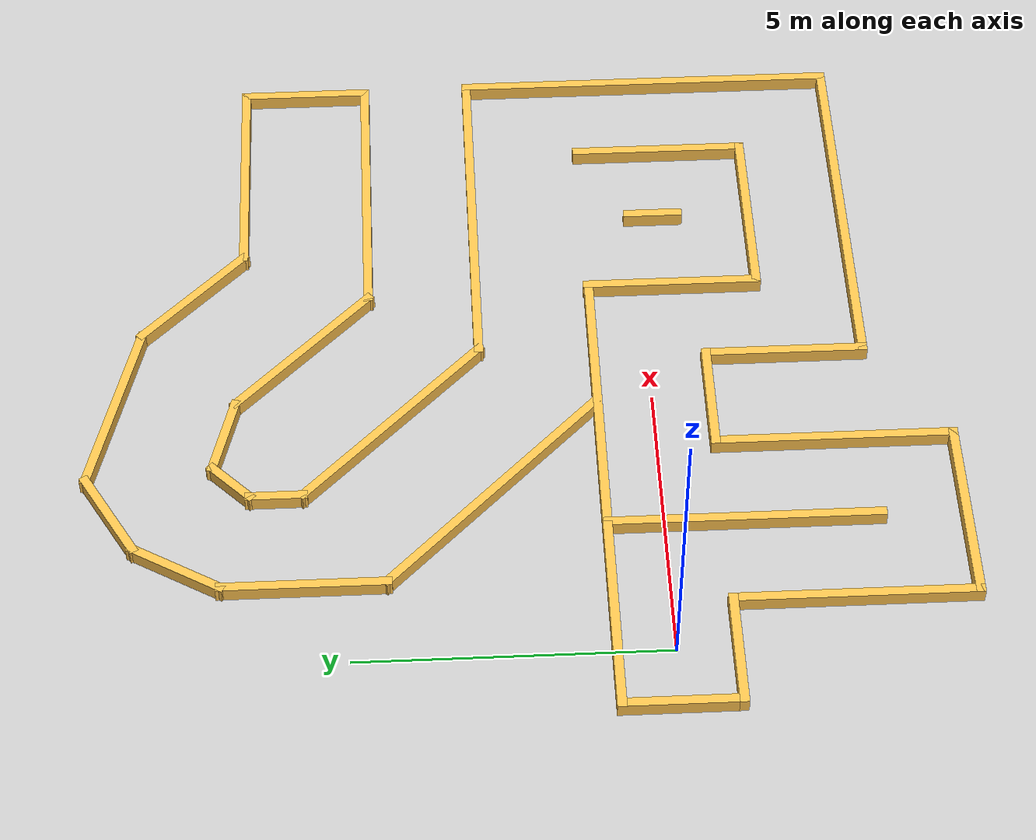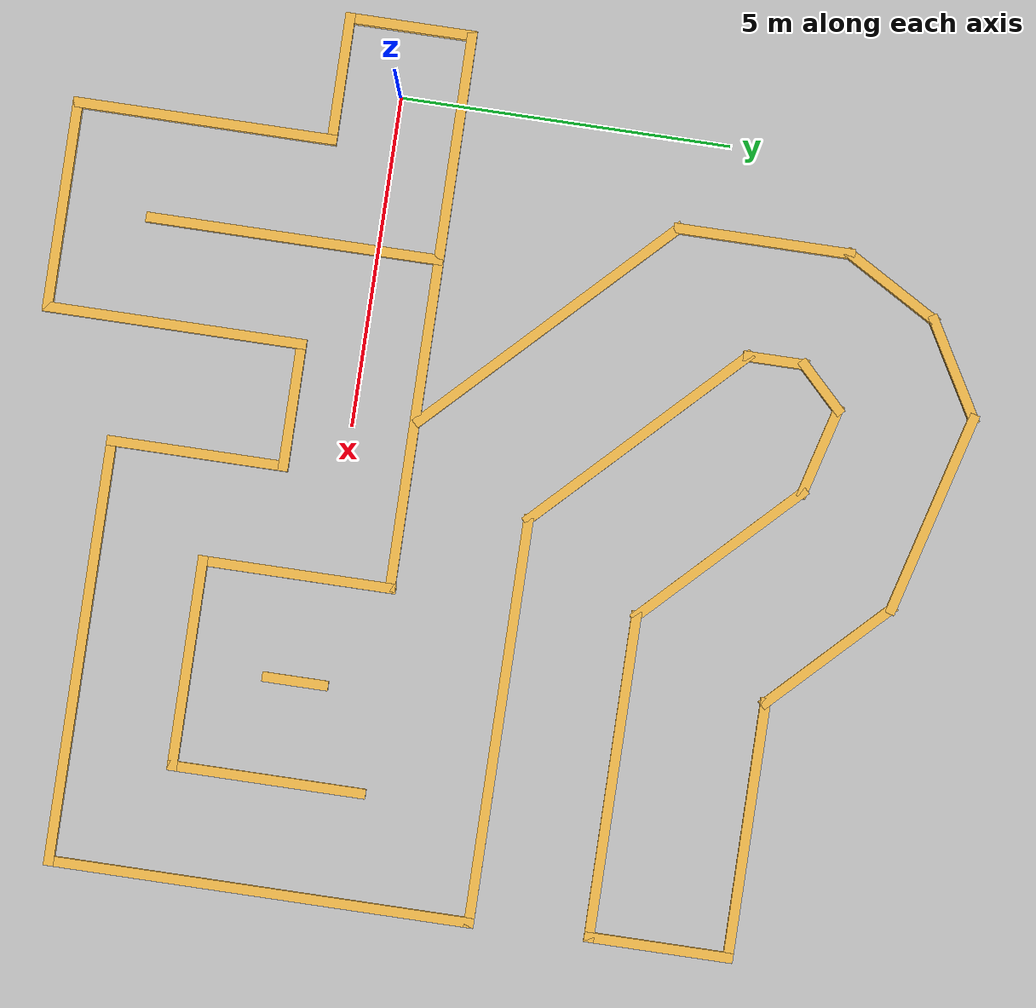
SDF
<?xml version="1.0" ?>
<sdf version="1.5">
  <world name="default">
    <!-- A global light source -->
    <include>
      <uri>model://sun</uri>
    </include>
    <!-- A ground plane -->
    <include>
      <uri>model://ground_plane</uri>
    </include>
    <!-- A ground plane -->
    <include>
      <uri>model://maze</uri>
    </include>
  </world>
</sdf>

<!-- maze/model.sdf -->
<sdf version='1.6'>
  <model name='maze'>
    <pose frame=''>5.512 2.22318 0 0 -0 0</pose>
    <link name='Wall_0'>
      <collision name='Wall_0_Collision'>
        <geometry>
          <box>
            <size>2 0.15 0.25</size>
          </box>
        </geometry>
        <pose frame=''>0 0 0.125 0 -0 0</pose>
      </collision>
      <visual name='Wall_0_Visual'>
        <pose frame=''>0 0 0.125 0 -0 0</pose>
        <geometry>
          <box>
            <size>2 0.15 0.25</size>
          </box>
        </geometry>
        <material>
          <script>
            <uri>file://media/materials/scripts/gazebo.material</uri>
            <name>Gazebo/Grey</name>
          </script>
          <ambient>1 0.764706 0.305882 1</ambient>
        </material>
        <meta>
          <layer>0</layer>
        </meta>
      </visual>
      <pose frame=''>-6.575 -2.22519 0 0 -0 1.5708</pose>
    </link>
    <link name='Wall_10'>
      <collision name='Wall_10_Collision'>
        <geometry>
          <box>
            <size>4 0.15 0.25</size>
          </box>
        </geometry>
        <pose frame=''>0 0 0.125 0 -0 0</pose>
      </collision>
      <visual name='Wall_10_Visual'>
        <pose frame=''>0 0 0.125 0 -0 0</pose>
        <geometry>
          <box>
            <size>4 0.15 0.25</size>
          </box>
        </geometry>
        <material>
          <script>
            <uri>file://media/materials/scripts/gazebo.material</uri>
            <name>Gazebo/Grey</name>
          </script>
          <ambient>1 0.764706 0.305882 1</ambient>
        </material>
        <meta>
          <layer>0</layer>
        </meta>
      </visual>
      <pose frame=''>-1.625 -5.07519 0 0 -0 1.5708</pose>
    </link>
    <link name='Wall_11'>
      <collision name='Wall_11_Collision'>
        <geometry>
          <box>
            <size>2 0.15 0.25</size>
          </box>
        </geometry>
        <pose frame=''>0 0 0.125 0 -0 0</pose>
      </collision>
      <visual name='Wall_11_Visual'>
        <pose frame=''>0 0 0.125 0 -0 0</pose>
        <geometry>
          <box>
            <size>2 0.15 0.25</size>
          </box>
        </geometry>
        <material>
          <script>
            <uri>file://media/materials/scripts/gazebo.material</uri>
            <name>Gazebo/Grey</name>
          </script>
          <ambient>1 0.764706 0.305882 1</ambient>
        </material>
        <meta>
          <layer>0</layer>
        </meta>
      </visual>
      <pose frame=''>-0.7 -3.15019 0 0 -0 0</pose>
    </link>
    <link name='Wall_12'>
      <collision name='Wall_12_Collision'>
        <geometry>
          <box>
            <size>2.75 0.15 0.25</size>
          </box>
        </geometry>
        <pose frame=''>0 0 0.125 0 -0 0</pose>
      </collision>
      <visual name='Wall_12_Visual'>
        <pose frame=''>0 0 0.125 0 -0 0</pose>
        <geometry>
          <box>
            <size>2.75 0.15 0.25</size>
          </box>
        </geometry>
        <material>
          <script>
            <uri>file://media/materials/scripts/gazebo.material</uri>
            <name>Gazebo/Grey</name>
          </script>
          <ambient>1 0.764706 0.305882 1</ambient>
        </material>
        <meta>
          <layer>0</layer>
        </meta>
      </visual>
      <pose frame=''>0.225 -4.45019 0 0 -0 -1.5708</pose>
    </link>
    <link name='Wall_13'>
      <collision name='Wall_13_Collision'>
        <geometry>
          <box>
            <size>6.5 0.15 0.25</size>
          </box>
        </geometry>
        <pose frame=''>0 0 0.125 0 -0 0</pose>
      </collision>
      <visual name='Wall_13_Visual'>
        <pose frame=''>0 0 0.125 0 -0 0</pose>
        <geometry>
          <box>
            <size>6.5 0.15 0.25</size>
          </box>
        </geometry>
        <material>
          <script>
            <uri>file://media/materials/scripts/gazebo.material</uri>
            <name>Gazebo/Grey</name>
          </script>
          <ambient>1 0.764706 0.305882 1</ambient>
        </material>
        <meta>
          <layer>0</layer>
        </meta>
      </visual>
      <pose frame=''>3.4 -5.75019 0 0 -0 0</pose>
    </link>
    <link name='Wall_15'>
      <collision name='Wall_15_Collision'>
        <geometry>
          <box>
            <size>4.5 0.15 0.25</size>
          </box>
        </geometry>
        <pose frame=''>0 0 0.125 0 -0 0</pose>
      </collision>
      <visual name='Wall_15_Visual'>
        <pose frame=''>0 0 0.125 0 -0 0</pose>
        <geometry>
          <box>
            <size>4.5 0.15 0.25</size>
          </box>
        </geometry>
        <material>
          <script>
            <uri>file://media/materials/scripts/gazebo.material</uri>
            <name>Gazebo/Grey</name>
          </script>
          <ambient>1 0.764706 0.305882 1</ambient>
        </material>
        <meta>
          <layer>0</layer>
        </meta>
      </visual>
      <pose frame=''>-3.174 -3.48618 0 0 -0 -1.5708</pose>
    </link>
    <link name='Wall_17'>
      <collision name='Wall_17_Collision'>
        <geometry>
          <box>
            <size>3 0.15 0.25</size>
          </box>
        </geometry>
        <pose frame=''>0 0 0.125 0 -0 0</pose>
      </collision>
      <visual name='Wall_17_Visual'>
        <pose frame=''>0 0 0.125 0 -0 0</pose>
        <geometry>
          <box>
            <size>3 0.15 0.25</size>
          </box>
        </geometry>
        <material>
          <script>
            <uri>file://media/materials/scripts/gazebo.material</uri>
            <name>Gazebo/Grey</name>
          </script>
          <ambient>1 0.764706 0.305882 1</ambient>
        </material>
        <meta>
          <layer>0</layer>
        </meta>
      </visual>
      <pose frame=''>1.801 -2.71019 0 0 -0 -1.5708</pose>
    </link>
    <link name='Wall_18'>
      <collision name='Wall_18_Collision'>
        <geometry>
          <box>
            <size>3.25 0.15 0.25</size>
          </box>
        </geometry>
        <pose frame=''>0 0 0.125 0 -0 0</pose>
      </collision>
      <visual name='Wall_18_Visual'>
        <pose frame=''>0 0 0.125 0 -0 0</pose>
        <geometry>
          <box>
            <size>3.25 0.15 0.25</size>
          </box>
        </geometry>
        <material>
          <script>
            <uri>file://media/materials/scripts/gazebo.material</uri>
            <name>Gazebo/Grey</name>
          </script>
          <ambient>1 0.764706 0.305882 1</ambient>
        </material>
        <meta>
          <layer>0</layer>
        </meta>
      </visual>
      <pose frame=''>3.351 -4.13518 0 0 -0 0</pose>
    </link>
    <link name='Wall_19'>
      <collision name='Wall_19_Collision'>
        <geometry>
          <box>
            <size>3 0.15 0.25</size>
          </box>
        </geometry>
        <pose frame=''>0 0 0.125 0 -0 0</pose>
      </collision>
      <visual name='Wall_19_Visual'>
        <pose frame=''>0 0 0.125 0 -0 0</pose>
        <geometry>
          <box>
            <size>3 0.15 0.25</size>
          </box>
        </geometry>
        <material>
          <script>
            <uri>file://media/materials/scripts/gazebo.material</uri>
            <name>Gazebo/Grey</name>
          </script>
          <ambient>1 0.764706 0.305882 1</ambient>
        </material>
        <meta>
          <layer>0</layer>
        </meta>
      </visual>
      <pose frame=''>4.901 -2.71019 0 0 -0 1.5708</pose>
    </link>
    <link name='Wall_21'>
      <collision name='Wall_21_Collision'>
        <geometry>
          <box>
            <size>6.5 0.15 0.25</size>
          </box>
        </geometry>
        <pose frame=''>0 0 0.125 0 -0 0</pose>
      </collision>
      <visual name='Wall_21_Visual'>
        <pose frame=''>0 0 0.125 0 -0 0</pose>
        <geometry>
          <box>
            <size>6.5 0.15 0.25</size>
          </box>
        </geometry>
        <material>
          <script>
            <uri>file://media/materials/scripts/gazebo.material</uri>
            <name>Gazebo/Grey</name>
          </script>
          <ambient>1 0.764706 0.305882 1</ambient>
        </material>
        <meta>
          <layer>0</layer>
        </meta>
      </visual>
      <pose frame=''>6.575 -2.57518 0 0 -0 1.5708</pose>
    </link>
    <link name='Wall_22'>
      <collision name='Wall_22_Collision'>
        <geometry>
          <box>
            <size>6.25 0.15 0.25</size>
          </box>
        </geometry>
        <pose frame=''>0 0 0.125 0 -0 0</pose>
      </collision>
      <visual name='Wall_22_Visual'>
        <pose frame=''>0 0 0.125 0 -0 0</pose>
        <geometry>
          <box>
            <size>6.25 0.15 0.25</size>
          </box>
        </geometry>
        <material>
          <script>
            <uri>file://media/materials/scripts/gazebo.material</uri>
            <name>Gazebo/Grey</name>
          </script>
          <ambient>1 0.764706 0.305882 1</ambient>
        </material>
        <meta>
          <layer>0</layer>
        </meta>
      </visual>
      <pose frame=''>3.525 0.599815 0 0 -0 3.14159</pose>
    </link>
    <link name='Wall_23'>
      <collision name='Wall_23_Collision'>
        <geometry>
          <box>
            <size>4.25 0.15 0.25</size>
          </box>
        </geometry>
        <pose frame=''>0 0 0.125 0 -0 0</pose>
      </collision>
      <visual name='Wall_23_Visual'>
        <pose frame=''>0 0 0.125 0 -0 0</pose>
        <geometry>
          <box>
            <size>4.25 0.15 0.25</size>
          </box>
        </geometry>
        <material>
          <script>
            <uri>file://media/materials/scripts/gazebo.material</uri>
            <name>Gazebo/Grey</name>
          </script>
          <ambient>1 0.764706 0.305882 1</ambient>
        </material>
        <meta>
          <layer>0</layer>
        </meta>
      </visual>
      <pose frame=''>-0.9745 2.04931 0 0 -0 2.35619</pose>
    </link>
    <link name='Wall_24'>
      <collision name='Wall_24_Collision'>
        <geometry>
          <box>
            <size>1 0.15 0.25</size>
          </box>
        </geometry>
        <pose frame=''>0 0 0.125 0 -0 0</pose>
      </collision>
      <visual name='Wall_24_Visual'>
        <pose frame=''>0 0 0.125 0 -0 0</pose>
        <geometry>
          <box>
            <size>1 0.15 0.25</size>
          </box>
        </geometry>
        <material>
          <script>
            <uri>file://media/materials/scripts/gazebo.material</uri>
            <name>Gazebo/Grey</name>
          </script>
          <ambient>1 0.764706 0.305882 1</ambient>
        </material>
        <meta>
          <layer>0</layer>
        </meta>
      </visual>
      <pose frame=''>-2.424 3.92381 0 0 -0 1.5708</pose>
    </link>
    <link name='Wall_25'>
      <collision name='Wall_25_Collision'>
        <geometry>
          <box>
            <size>1 0.15 0.25</size>
          </box>
        </geometry>
        <pose frame=''>0 0 0.125 0 -0 0</pose>
      </collision>
      <visual name='Wall_25_Visual'>
        <pose frame=''>0 0 0.125 0 -0 0</pose>
        <geometry>
          <box>
            <size>1 0.15 0.25</size>
          </box>
        </geometry>
        <material>
          <script>
            <uri>file://media/materials/scripts/gazebo.material</uri>
            <name>Gazebo/Grey</name>
          </script>
          <ambient>1 0.764706 0.305882 1</ambient>
        </material>
        <meta>
          <layer>0</layer>
        </meta>
      </visual>
      <pose frame=''>-2.1235 4.64931 0 0 -0 0.785398</pose>
    </link>
    <link name='Wall_26'>
      <collision name='Wall_26_Collision'>
        <geometry>
          <box>
            <size>1.5 0.15 0.25</size>
          </box>
        </geometry>
        <pose frame=''>0 0 0.125 0 -0 0</pose>
      </collision>
      <visual name='Wall_26_Visual'>
        <pose frame=''>0 0 0.125 0 -0 0</pose>
        <geometry>
          <box>
            <size>1.5 0.15 0.25</size>
          </box>
        </geometry>
        <material>
          <script>
            <uri>file://media/materials/scripts/gazebo.material</uri>
            <name>Gazebo/Grey</name>
          </script>
          <ambient>1 0.764706 0.305882 1</ambient>
        </material>
        <meta>
          <layer>0</layer>
        </meta>
      </visual>
      <pose frame=''>-1.171 4.77531 0 0 -0 -0.261509</pose>
    </link>
    <link name='Wall_27'>
      <collision name='Wall_27_Collision'>
        <geometry>
          <box>
            <size>3.25 0.15 0.25</size>
          </box>
        </geometry>
        <pose frame=''>0 0 0.125 0 -0 0</pose>
      </collision>
      <visual name='Wall_27_Visual'>
        <pose frame=''>0 0 0.125 0 -0 0</pose>
        <geometry>
          <box>
            <size>3.25 0.15 0.25</size>
          </box>
        </geometry>
        <material>
          <script>
            <uri>file://media/materials/scripts/gazebo.material</uri>
            <name>Gazebo/Grey</name>
          </script>
          <ambient>1 0.764706 0.305882 1</ambient>
        </material>
        <meta>
          <layer>0</layer>
        </meta>
      </visual>
      <pose frame=''>0.577 3.50481 0 0 -0 -0.785398</pose>
    </link>
    <link name='Wall_28'>
      <collision name='Wall_28_Collision'>
        <geometry>
          <box>
            <size>5 0.15 0.25</size>
          </box>
        </geometry>
        <pose frame=''>0 0 0.125 0 -0 0</pose>
      </collision>
      <visual name='Wall_28_Visual'>
        <pose frame=''>0 0 0.125 0 -0 0</pose>
        <geometry>
          <box>
            <size>5 0.15 0.25</size>
          </box>
        </geometry>
        <material>
          <script>
            <uri>file://media/materials/scripts/gazebo.material</uri>
            <name>Gazebo/Grey</name>
          </script>
          <ambient>1 0.764706 0.305882 1</ambient>
        </material>
        <meta>
          <layer>0</layer>
        </meta>
      </visual>
      <pose frame=''>4.098 2.40882 0 0 -0 0</pose>
    </link>
    <link name='Wall_29'>
      <collision name='Wall_29_Collision'>
        <geometry>
          <box>
            <size>2.25 0.15 0.25</size>
          </box>
        </geometry>
        <pose frame=''>0 0 0.125 0 -0 0</pose>
      </collision>
      <visual name='Wall_29_Visual'>
        <pose frame=''>0 0 0.125 0 -0 0</pose>
        <geometry>
          <box>
            <size>2.25 0.15 0.25</size>
          </box>
        </geometry>
        <material>
          <script>
            <uri>file://media/materials/scripts/gazebo.material</uri>
            <name>Gazebo/Grey</name>
          </script>
          <ambient>1 0.764706 0.305882 1</ambient>
        </material>
        <meta>
          <layer>0</layer>
        </meta>
      </visual>
      <pose frame=''>6.523 3.45881 0 0 -0 1.5708</pose>
    </link>
    <link name='Wall_30'>
      <collision name='Wall_30_Collision'>
        <geometry>
          <box>
            <size>4 0.15 0.25</size>
          </box>
        </geometry>
        <pose frame=''>0 0 0.125 0 -0 0</pose>
      </collision>
      <visual name='Wall_30_Visual'>
        <pose frame=''>0 0 0.125 0 -0 0</pose>
        <geometry>
          <box>
            <size>4 0.15 0.25</size>
          </box>
        </geometry>
        <material>
          <script>
            <uri>file://media/materials/scripts/gazebo.material</uri>
            <name>Gazebo/Grey</name>
          </script>
          <ambient>1 0.764706 0.305882 1</ambient>
        </material>
        <meta>
          <layer>0</layer>
        </meta>
      </visual>
      <pose frame=''>4.598 4.50882 0 0 -0 3.14159</pose>
    </link>
    <link name='Wall_31'>
      <collision name='Wall_31_Collision'>
        <geometry>
          <box>
            <size>2.5 0.15 0.25</size>
          </box>
        </geometry>
        <pose frame=''>0 0 0.125 0 -0 0</pose>
      </collision>
      <visual name='Wall_31_Visual'>
        <pose frame=''>0 0 0.125 0 -0 0</pose>
        <geometry>
          <box>
            <size>2.5 0.15 0.25</size>
          </box>
        </geometry>
        <material>
          <script>
            <uri>file://media/materials/scripts/gazebo.material</uri>
            <name>Gazebo/Grey</name>
          </script>
          <ambient>1 0.764706 0.305882 1</ambient>
        </material>
        <meta>
          <layer>0</layer>
        </meta>
      </visual>
      <pose frame=''>1.842 5.33932 0 0 -0 2.35649</pose>
    </link>
    <link name='Wall_32'>
      <collision name='Wall_32_Collision'>
        <geometry>
          <box>
            <size>3.25 0.15 0.25</size>
          </box>
        </geometry>
        <pose frame=''>0 0 0.125 0 -0 0</pose>
      </collision>
      <visual name='Wall_32_Visual'>
        <pose frame=''>0 0 0.125 0 -0 0</pose>
        <geometry>
          <box>
            <size>3.25 0.15 0.25</size>
          </box>
        </geometry>
        <material>
          <script>
            <uri>file://media/materials/scripts/gazebo.material</uri>
            <name>Gazebo/Grey</name>
          </script>
          <ambient>1 0.764706 0.305882 1</ambient>
        </material>
        <meta>
          <layer>0</layer>
        </meta>
      </visual>
      <pose frame=''>-0.486 6.57132 0 0 -0 2.87956</pose>
    </link>
    <link name='Wall_33'>
      <collision name='Wall_33_Collision'>
        <geometry>
          <box>
            <size>1.75 0.15 0.25</size>
          </box>
        </geometry>
        <pose frame=''>0 0 0.125 0 -0 0</pose>
      </collision>
      <visual name='Wall_33_Visual'>
        <pose frame=''>0 0 0.125 0 -0 0</pose>
        <geometry>
          <box>
            <size>1.75 0.15 0.25</size>
          </box>
        </geometry>
        <material>
          <script>
            <uri>file://media/materials/scripts/gazebo.material</uri>
            <name>Gazebo/Grey</name>
          </script>
          <ambient>1 0.764706 0.305882 1</ambient>
        </material>
        <meta>
          <layer>0</layer>
        </meta>
      </visual>
      <pose frame=''>-2.676 6.57281 0 0 -0 -2.61811</pose>
    </link>
    <link name='Wall_34'>
      <collision name='Wall_34_Collision'>
        <geometry>
          <box>
            <size>1.75 0.15 0.25</size>
          </box>
        </geometry>
        <pose frame=''>0 0 0.125 0 -0 0</pose>
      </collision>
      <visual name='Wall_34_Visual'>
        <pose frame=''>0 0 0.125 0 -0 0</pose>
        <geometry>
          <box>
            <size>1.75 0.15 0.25</size>
          </box>
        </geometry>
        <material>
          <script>
            <uri>file://media/materials/scripts/gazebo.material</uri>
            <name>Gazebo/Grey</name>
          </script>
          <ambient>1 0.764706 0.305882 1</ambient>
        </material>
        <meta>
          <layer>0</layer>
        </meta>
      </visual>
      <pose frame=''>-3.769 5.47982 0 0 -0 -2.09428</pose>
    </link>
    <link name='Wall_35'>
      <collision name='Wall_35_Collision'>
        <geometry>
          <box>
            <size>2.75 0.15 0.25</size>
          </box>
        </geometry>
        <pose frame=''>0 0 0.125 0 -0 0</pose>
      </collision>
      <visual name='Wall_35_Visual'>
        <pose frame=''>0 0 0.125 0 -0 0</pose>
        <geometry>
          <box>
            <size>2.75 0.15 0.25</size>
          </box>
        </geometry>
        <material>
          <script>
            <uri>file://media/materials/scripts/gazebo.material</uri>
            <name>Gazebo/Grey</name>
          </script>
          <ambient>1 0.764706 0.305882 1</ambient>
        </material>
        <meta>
          <layer>0</layer>
        </meta>
      </visual>
      <pose frame=''>-4.169 3.48681 0 0 -0 -1.5708</pose>
    </link>
    <link name='Wall_36'>
      <collision name='Wall_36_Collision'>
        <geometry>
          <box>
            <size>5 0.15 0.25</size>
          </box>
        </geometry>
        <pose frame=''>0 0 0.125 0 -0 0</pose>
      </collision>
      <visual name='Wall_36_Visual'>
        <pose frame=''>0 0 0.125 0 -0 0</pose>
        <geometry>
          <box>
            <size>5 0.15 0.25</size>
          </box>
        </geometry>
        <material>
          <script>
            <uri>file://media/materials/scripts/gazebo.material</uri>
            <name>Gazebo/Grey</name>
          </script>
          <ambient>1 0.764706 0.305882 1</ambient>
        </material>
        <meta>
          <layer>0</layer>
        </meta>
      </visual>
      <pose frame=''>-2.454 0.472315 0 0 -0 -0.785252</pose>
    </link>
    <link name='Wall_38'>
      <collision name='Wall_38_Collision'>
        <geometry>
          <box>
            <size>1 0.15 0.25</size>
          </box>
        </geometry>
        <pose frame=''>0 0 0.125 0 -0 0</pose>
      </collision>
      <visual name='Wall_38_Visual'>
        <pose frame=''>0 0 0.125 0 -0 0</pose>
        <geometry>
          <box>
            <size>1 0.15 0.25</size>
          </box>
        </geometry>
        <material>
          <script>
            <uri>file://media/materials/scripts/gazebo.material</uri>
            <name>Gazebo/Grey</name>
          </script>
          <ambient>1 0.764706 0.305882 1</ambient>
        </material>
        <meta>
          <layer>0</layer>
        </meta>
      </visual>
      <pose frame=''>3.38374 -2.50101 0 0 -0 1.5708</pose>
    </link>
    <link name='Wall_4'>
      <collision name='Wall_4_Collision'>
        <geometry>
          <box>
            <size>8.5 0.15 0.25</size>
          </box>
        </geometry>
        <pose frame=''>0 0 0.125 0 -0 0</pose>
      </collision>
      <visual name='Wall_4_Visual'>
        <pose frame=''>0 0 0.125 0 -0 0</pose>
        <geometry>
          <box>
            <size>8.5 0.15 0.25</size>
          </box>
        </geometry>
        <material>
          <script>
            <uri>file://media/materials/scripts/gazebo.material</uri>
            <name>Gazebo/Grey</name>
          </script>
          <ambient>1 0.764706 0.305882 1</ambient>
        </material>
        <meta>
          <layer>0</layer>
        </meta>
      </visual>
      <pose frame=''>-2.4 -1.30018 0 0 -0 0</pose>
    </link>
    <link name='Wall_7'>
      <collision name='Wall_7_Collision'>
        <geometry>
          <box>
            <size>2 0.15 0.25</size>
          </box>
        </geometry>
        <pose frame=''>0 0 0.125 0 -0 0</pose>
      </collision>
      <visual name='Wall_7_Visual'>
        <pose frame=''>0 0 0.125 0 -0 0</pose>
        <geometry>
          <box>
            <size>2 0.15 0.25</size>
          </box>
        </geometry>
        <material>
          <script>
            <uri>file://media/materials/scripts/gazebo.material</uri>
            <name>Gazebo/Grey</name>
          </script>
          <ambient>1 0.764706 0.305882 1</ambient>
        </material>
        <meta>
          <layer>0</layer>
        </meta>
      </visual>
      <pose frame=''>-5.65 -3.15019 0 0 -0 0</pose>
    </link>
    <link name='Wall_8'>
      <collision name='Wall_8_Collision'>
        <geometry>
          <box>
            <size>4 0.15 0.25</size>
          </box>
        </geometry>
        <pose frame=''>0 0 0.125 0 -0 0</pose>
      </collision>
      <visual name='Wall_8_Visual'>
        <pose frame=''>0 0 0.125 0 -0 0</pose>
        <geometry>
          <box>
            <size>4 0.15 0.25</size>
          </box>
        </geometry>
        <material>
          <script>
            <uri>file://media/materials/scripts/gazebo.material</uri>
            <name>Gazebo/Grey</name>
          </script>
          <ambient>1 0.764706 0.305882 1</ambient>
        </material>
        <meta>
          <layer>0</layer>
        </meta>
      </visual>
      <pose frame=''>-4.725 -5.07519 0 0 -0 -1.5708</pose>
    </link>
    <link name='Wall_9'>
      <collision name='Wall_9_Collision'>
        <geometry>
          <box>
            <size>3.25 0.15 0.25</size>
          </box>
        </geometry>
        <pose frame=''>0 0 0.125 0 -0 0</pose>
      </collision>
      <visual name='Wall_9_Visual'>
        <pose frame=''>0 0 0.125 0 -0 0</pose>
        <geometry>
          <box>
            <size>3.25 0.15 0.25</size>
          </box>
        </geometry>
        <material>
          <script>
            <uri>file://media/materials/scripts/gazebo.material</uri>
            <name>Gazebo/Grey</name>
          </script>
          <ambient>1 0.764706 0.305882 1</ambient>
        </material>
        <meta>
          <layer>0</layer>
        </meta>
      </visual>
      <pose frame=''>-3.175 -7.00019 0 0 -0 0</pose>
    </link>
    <static>1</static>
  </model>
</sdf>
